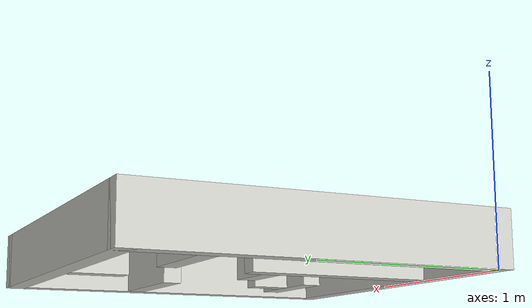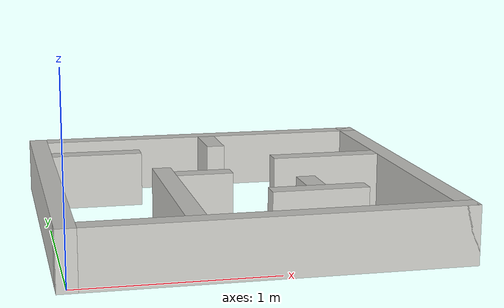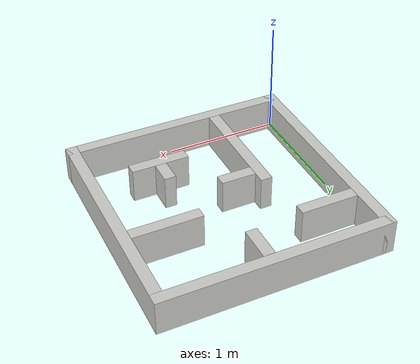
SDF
<?xml version='1.0'?>
<sdf version='1.6'>
  <model name='qmp_quadrate'>
    <pose frame=''>0.95 0.95 0 0 -0 0</pose>
    <link name='Wall_0'>
      <collision name='Wall_0_Collision'>
        <geometry>
          <box>
            <size>2 0.1 0.3</size>
          </box>
        </geometry>
        <pose frame=''>0 0 0.15 0 -0 0</pose>
      </collision>
      <visual name='Wall_0_Visual'>
        <pose frame=''>0 0 0.15 0 -0 0</pose>
        <geometry>
          <box>
            <size>2 0.1 0.3</size>
          </box>
        </geometry>
        <material>
          <script>
            <uri>file://media/materials/scripts/gazebo.material</uri>
            <name>Gazebo/CeilingTiled</name>
          </script>
          <ambient>0.435294 0.796078 0.67451 1</ambient>
        </material>
        <meta>
          <layer>0</layer>
        </meta>
      </visual>
      <pose frame=''>0 -0.95 0 0 -0 0</pose>
    </link>
    <link name='Wall_10'>
      <collision name='Wall_10_Collision'>
        <geometry>
          <box>
            <size>0.5 0.1 0.3</size>
          </box>
        </geometry>
        <pose frame=''>0 0 0.15 0 -0 0</pose>
      </collision>
      <visual name='Wall_10_Visual'>
        <pose frame=''>0 0 0.15 0 -0 0</pose>
        <geometry>
          <box>
            <size>0.5 0.1 0.3</size>
          </box>
        </geometry>
        <material>
          <script>
            <uri>file://media/materials/scripts/gazebo.material</uri>
            <name>Gazebo/CeilingTiled</name>
          </script>
          <ambient>0.996078 0.47451 0.0196078 1</ambient>
        </material>
        <meta>
          <layer>0</layer>
        </meta>
      </visual>
      <pose frame=''>-0.65 0.55 0 0 -0 0</pose>
    </link>
    <link name='Wall_12'>
      <collision name='Wall_12_Collision'>
        <geometry>
          <box>
            <size>0.3 0.1 0.3</size>
          </box>
        </geometry>
        <pose frame=''>0 0 0.15 0 -0 0</pose>
      </collision>
      <visual name='Wall_12_Visual'>
        <pose frame=''>0 0 0.15 0 -0 0</pose>
        <geometry>
          <box>
            <size>0.3 0.1 0.3</size>
          </box>
        </geometry>
        <material>
          <script>
            <uri>file://media/materials/scripts/gazebo.material</uri>
            <name>Gazebo/CeilingTiled</name>
          </script>
          <ambient>0.996078 0.47451 0.0196078 1</ambient>
        </material>
        <meta>
          <layer>0</layer>
        </meta>
      </visual>
      <pose frame=''>-0.15 -0.05 0 0 -0 0</pose>
    </link>
    <link name='Wall_14'>
      <collision name='Wall_14_Collision'>
        <geometry>
          <box>
            <size>0.299 0.1 0.3</size>
          </box>
        </geometry>
        <pose frame=''>0 0 0.15 0 -0 0</pose>
      </collision>
      <visual name='Wall_14_Visual'>
        <pose frame=''>0 0 0.15 0 -0 0</pose>
        <geometry>
          <box>
            <size>0.299 0.1 0.3</size>
          </box>
        </geometry>
        <material>
          <script>
            <uri>file://media/materials/scripts/gazebo.material</uri>
            <name>Gazebo/CeilingTiled</name>
          </script>
          <ambient>0.996078 0.47451 0.0196078 1</ambient>
        </material>
        <meta>
          <layer>0</layer>
        </meta>
      </visual>
      <pose frame=''>0.05 0.75 0 0 -0 -1.5708</pose>
    </link>
    <link name='Wall_16'>
      <collision name='Wall_16_Collision'>
        <geometry>
          <box>
            <size>0.5 0.1 0.3</size>
          </box>
        </geometry>
        <pose frame=''>0 0 0.15 0 -0 0</pose>
      </collision>
      <visual name='Wall_16_Visual'>
        <pose frame=''>0 0 0.15 0 -0 0</pose>
        <geometry>
          <box>
            <size>0.5 0.1 0.3</size>
          </box>
        </geometry>
        <material>
          <script>
            <uri>file://media/materials/scripts/gazebo.material</uri>
            <name>Gazebo/CeilingTiled</name>
          </script>
          <ambient>0.996078 0.47451 0.0196078 1</ambient>
        </material>
        <meta>
          <layer>0</layer>
        </meta>
      </visual>
      <pose frame=''>0.35 -0.5 0 0 -0 3.14159</pose>
    </link>
    <link name='Wall_18'>
      <collision name='Wall_18_Collision'>
        <geometry>
          <box>
            <size>0.6 0.1 0.3</size>
          </box>
        </geometry>
        <pose frame=''>0 0 0.15 0 -0 0</pose>
      </collision>
      <visual name='Wall_18_Visual'>
        <pose frame=''>0 0 0.15 0 -0 0</pose>
        <geometry>
          <box>
            <size>0.6 0.1 0.3</size>
          </box>
        </geometry>
        <material>
          <script>
            <uri>file://media/materials/scripts/gazebo.material</uri>
            <name>Gazebo/CeilingTiled</name>
          </script>
          <ambient>0.996078 0.47451 0.0196078 1</ambient>
        </material>
        <meta>
          <layer>0</layer>
        </meta>
      </visual>
      <pose frame=''>0.6 0.25 0 0 -0 3.14159</pose>
    </link>
    <link name='Wall_2'>
      <collision name='Wall_2_Collision'>
        <geometry>
          <box>
            <size>2 0.1 0.3</size>
          </box>
        </geometry>
        <pose frame=''>0 0 0.15 0 -0 0</pose>
      </collision>
      <visual name='Wall_2_Visual'>
        <pose frame=''>0 0 0.15 0 -0 0</pose>
        <geometry>
          <box>
            <size>2 0.1 0.3</size>
          </box>
        </geometry>
        <material>
          <script>
            <uri>file://media/materials/scripts/gazebo.material</uri>
            <name>Gazebo/CeilingTiled</name>
          </script>
          <ambient>0.435294 0.796078 0.67451 1</ambient>
        </material>
        <meta>
          <layer>0</layer>
        </meta>
      </visual>
      <pose frame=''>-0.95 0 0 0 -0 1.5708</pose>
    </link>
    <link name='Wall_20'>
      <collision name='Wall_20_Collision'>
        <geometry>
          <box>
            <size>0.2 0.1 0.3</size>
          </box>
        </geometry>
        <pose frame=''>0 0 0.15 0 -0 0</pose>
      </collision>
      <visual name='Wall_20_Visual'>
        <pose frame=''>0 0 0.15 0 -0 0</pose>
        <geometry>
          <box>
            <size>0.2 0.1 0.3</size>
          </box>
        </geometry>
        <material>
          <script>
            <uri>file://media/materials/scripts/gazebo.material</uri>
            <name>Gazebo/CeilingTiled</name>
          </script>
          <ambient>0.996078 0.47451 0.0196078 1</ambient>
        </material>
        <meta>
          <layer>0</layer>
        </meta>
      </visual>
      <pose frame=''>0.35 -0.35 0 0 -0 1.5708</pose>
    </link>
    <link name='Wall_3'>
      <collision name='Wall_3_Collision'>
        <geometry>
          <box>
            <size>2 0.1 0.3</size>
          </box>
        </geometry>
        <pose frame=''>0 0 0.15 0 -0 0</pose>
      </collision>
      <visual name='Wall_3_Visual'>
        <pose frame=''>0 0 0.15 0 -0 0</pose>
        <geometry>
          <box>
            <size>2 0.1 0.3</size>
          </box>
        </geometry>
        <material>
          <script>
            <uri>file://media/materials/scripts/gazebo.material</uri>
            <name>Gazebo/CeilingTiled</name>
          </script>
          <ambient>0.435294 0.796078 0.67451 1</ambient>
        </material>
        <meta>
          <layer>0</layer>
        </meta>
      </visual>
      <pose frame=''>0 0.95 0 0 -0 0</pose>
    </link>
    <link name='Wall_6'>
      <collision name='Wall_6_Collision'>
        <geometry>
          <box>
            <size>2 0.1 0.3</size>
          </box>
        </geometry>
        <pose frame=''>0 0 0.15 0 -0 0</pose>
      </collision>
      <visual name='Wall_6_Visual'>
        <pose frame=''>0 0 0.15 0 -0 0</pose>
        <geometry>
          <box>
            <size>2 0.1 0.3</size>
          </box>
        </geometry>
        <material>
          <script>
            <uri>file://media/materials/scripts/gazebo.material</uri>
            <name>Gazebo/CeilingTiled</name>
          </script>
          <ambient>0.435294 0.796078 0.67451 1</ambient>
        </material>
        <meta>
          <layer>0</layer>
        </meta>
      </visual>
      <pose frame=''>0.95 0 0 0 -0 -1.5708</pose>
    </link>
    <link name='Wall_8'>
      <collision name='Wall_8_Collision'>
        <geometry>
          <box>
            <size>1 0.1 0.3</size>
          </box>
        </geometry>
        <pose frame=''>0 0 0.15 0 -0 0</pose>
      </collision>
      <visual name='Wall_8_Visual'>
        <pose frame=''>0 0 0.15 0 -0 0</pose>
        <geometry>
          <box>
            <size>1 0.1 0.3</size>
          </box>
        </geometry>
        <material>
          <script>
            <uri>file://media/materials/scripts/gazebo.material</uri>
            <name>Gazebo/CeilingTiled</name>
          </script>
          <ambient>0.996078 0.47451 0.0196078 1</ambient>
        </material>
        <meta>
          <layer>0</layer>
        </meta>
      </visual>
      <pose frame=''>-0.35 -0.4 0 0 -0 1.5708</pose>
    </link>
    <static>1</static>
  </model>
</sdf>
